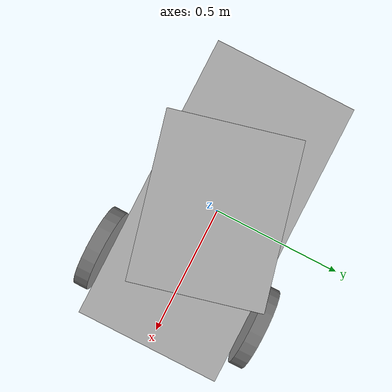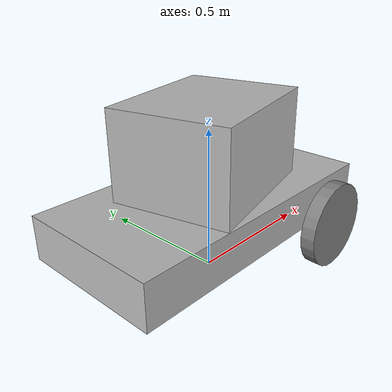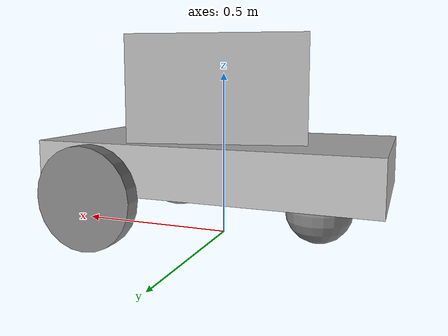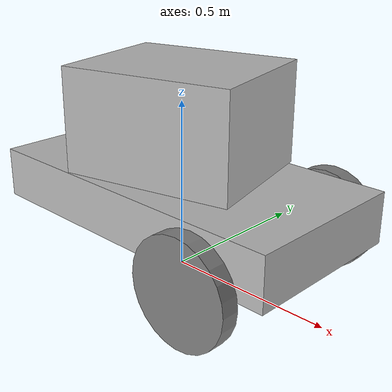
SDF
<?xml version="1.0" ?>
<sdf version="1.6">
  <model name='Dolly'>
    <pose>0 0 0.225 0 -0 0</pose>

    <link name='base_link'>
      <inertial>
        <mass>1.0</mass>
        <inertia>
          <ixx>0.0227</ixx>
          <ixy>0</ixy>
          <ixz>0</ixz>
          <iyy>0.0852</iyy>
          <iyz>0</iyz>
          <izz>0.1041</izz>
        </inertia>
      </inertial>
      <visual name='visual'>
        <geometry>
          <box>
            <size>1.0 0.5 0.15</size>
          </box>
        </geometry>
        <material>
          <script>
            <uri>model://dolly/materials/scripts</uri>
            <uri>model://dolly/materials/textures</uri>
            <name>Dolly/fur</name>
          </script>
        </material>
      </visual>
      <visual name="box">
        <pose>0 0 0.08 0 0 0.24</pose>
        <geometry>
          <mesh>
            <uri>model://cardboard_box/meshes/cardboard_box.dae</uri>
            <scale>1.25931896 1.007455168 0.755591376</scale>
          </mesh>
        </geometry>
      </visual>
      <sensor name="ultrasonic_range" type="ray">
        <pose>0.5 0 0 0 0 0</pose>
        <ray>
          <scan>
            <horizontal>
              <samples>5</samples>
              <resolution>1.0</resolution>
              <min_angle>-0.12</min_angle>
              <max_angle>0.12</max_angle>
            </horizontal>
            <vertical>
              <samples>5</samples>
              <resolution>1.000000</resolution>
              <min_angle>-0.01</min_angle>
              <max_angle>0.01</max_angle>
            </vertical>
          </scan>
          <range>
            <min>0.002</min>
            <max>4.0</max>
            <resolution>0.01</resolution>
          </range>
          <noise>
            <type>gaussian</type>
            <mean>0.0</mean>
            <stddev>0.01</stddev>
          </noise>
        </ray>
        <always_on>true</always_on>
        <visualize>true</visualize>
        <update_rate>5</update_rate>
        <plugin name="ultrasonic_range_sensor" filename="libgazebo_ros_ray_sensor.so">
          <ros>
            <namespace>/</namespace>
            <remapping>~/out:=scan</remapping>
          </ros>
          <output_type>sensor_msgs/LaserScan</output_type>
          <radiation_type>ultrasound</radiation_type>
          <frame_name>odom</frame_name>
        </plugin>
      </sensor>
    </link>
    <link name='caster'>
      <pose>-0.3 0 -0.125 0 0 0</pose>
      <inertial>
        <mass>0.0415553</mass>
        <inertia>
          <ixx>7.97741e-05</ixx>
          <ixy>0</ixy>
          <ixz>0</ixz>
          <iyy>7.97741e-05</iyy>
          <iyz>0</iyz>
          <izz>7.97741e-05</izz>
        </inertia>
      </inertial>
      <visual name='visual'>
        <geometry>
          <sphere>
            <radius>0.1</radius>
          </sphere>
        </geometry>
        <material>
          <diffuse>0.5 0.5 0.5 1</diffuse>
          <ambient>0 0 0 1</ambient>
          <specular>1 1 1 1</specular>
          <emissive>0 0 0 1</emissive>
        </material>
      </visual>
      <collision name='collision'>
        <geometry>
          <sphere>
            <radius>0.1</radius>
          </sphere>
        </geometry>
        <surface>
          <friction>
            <ode>
              <mu>1</mu>
              <mu2>1</mu2>
              <slip1>0</slip1>
              <slip2>0</slip2>
            </ode>
          </friction>
          <contact>
            <ode>
              <soft_cfm>0</soft_cfm>
              <soft_erp>0.2</soft_erp>
              <kp>1e+13</kp>
              <kd>1</kd>
              <max_vel>0.01</max_vel>
              <min_depth>0</min_depth>
            </ode>
          </contact>
        </surface>
      </collision>
    </link>

    <link name='left_wheel'>
      <pose>0.3 0.3 -0.075 -1.5707 0 0</pose>
      <inertial>
        <mass>0.5</mass>
        <inertia>
          <ixx>0.0029</ixx>
          <ixy>0</ixy>
          <ixz>0</ixz>
          <iyy>0.0029</iyy>
          <iyz>0</iyz>
          <izz>0.0056</izz>
        </inertia>
      </inertial>
      <visual name='visual'>
        <geometry>
          <cylinder>
            <radius>0.15</radius>
            <length>0.05</length>
          </cylinder>
        </geometry>
        <material>
          <diffuse>0.5 0.5 0.5 1</diffuse>
          <ambient>0 0 0 1</ambient>
          <specular>1 1 1 1</specular>
          <emissive>0 0 0 1</emissive>
        </material>
      </visual>
      <collision name='collision'>
        <geometry>
          <sphere>
            <radius>0.15</radius>
          </sphere>
        </geometry>
        <surface>
          <friction>
            <ode>
              <mu>1</mu>
              <mu2>1</mu2>
              <slip1>0</slip1>
              <slip2>0</slip2>
            </ode>
          </friction>
          <contact>
            <ode>
              <soft_cfm>0</soft_cfm>
              <soft_erp>0.2</soft_erp>
              <kp>1e+13</kp>
              <kd>1</kd>
              <max_vel>0.01</max_vel>
              <min_depth>0.01</min_depth>
            </ode>
          </contact>
        </surface>
      </collision>
    </link>

    <link name='right_wheel'>
      <pose>0.3 -0.3 -0.075 -1.5707 0 0</pose>
      <inertial>
        <mass>0.5</mass>
        <inertia>
          <ixx>0.0029</ixx>
          <ixy>0</ixy>
          <ixz>0</ixz>
          <iyy>0.0029</iyy>
          <iyz>0</iyz>
          <izz>0.0056</izz>
        </inertia>
      </inertial>
      <visual name='visual'>
        <geometry>
          <cylinder>
            <radius>0.15</radius>
            <length>0.05</length>
          </cylinder>
        </geometry>
        <material>
          <diffuse>0.5 0.5 0.5 1</diffuse>
          <ambient>0 0 0 1</ambient>
          <specular>1 1 1 1</specular>
          <emissive>0 0 0 1</emissive>
        </material>
      </visual>
      <collision name='collision'>
        <geometry>
          <sphere>
            <radius>0.15</radius>
          </sphere>
        </geometry>
        <surface>
          <friction>
            <ode>
              <mu>1</mu>
              <mu2>1</mu2>
              <slip1>0</slip1>
              <slip2>0</slip2>
            </ode>
          </friction>
          <contact>
            <ode>
              <soft_cfm>0</soft_cfm>
              <soft_erp>0.2</soft_erp>
              <kp>1e+13</kp>
              <kd>1</kd>
              <max_vel>0.01</max_vel>
              <min_depth>0.01</min_depth>
            </ode>
          </contact>
        </surface>
      </collision>
    </link>

    <joint name='left_wheel_joint' type='revolute'>
      <parent>base_link</parent>
      <child>left_wheel</child>
      <axis>
        <xyz>0 0 1</xyz>
        <limit>
          <lower>-1.79769e+308</lower>
          <upper>1.79769e+308</upper>
        </limit>
      </axis>
    </joint>

    <joint name='right_wheel_joint' type='revolute'>
      <parent>base_link</parent>
      <child>right_wheel</child>
      <axis>
        <xyz>0 0 1</xyz>
        <limit>
          <lower>-1.79769e+308</lower>
          <upper>1.79769e+308</upper>
        </limit>
      </axis>
    </joint>

    <joint name='caster_wheel' type='ball'>
      <parent>base_link</parent>
      <child>caster</child>
    </joint>

    <plugin name='diff_drive' filename='libgazebo_ros_diff_drive.so'>

      <ros>
        <namespace>/</namespace>
      </ros>

      <!-- wheels -->
      <left_joint>left_wheel_joint</left_joint>
      <right_joint>right_wheel_joint</right_joint>

      <!-- kinematics -->
      <wheel_separation>1.25</wheel_separation>
      <wheel_diameter>0.3</wheel_diameter>

      <!-- limits -->
      <max_wheel_torque>20</max_wheel_torque>
      <max_wheel_acceleration>1.0</max_wheel_acceleration>

      <!-- output -->
      <publish_odom>true</publish_odom>
      <publish_odom_tf>true</publish_odom_tf>

      <odometry_frame>odom</odometry_frame>
      <robot_base_frame>base_link</robot_base_frame>

    </plugin>

  </model>
</sdf>
